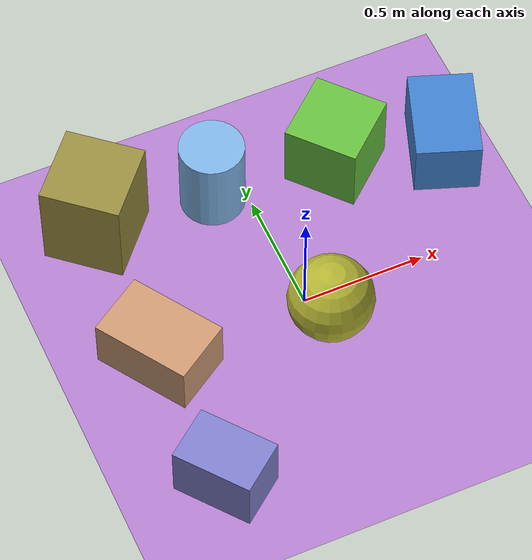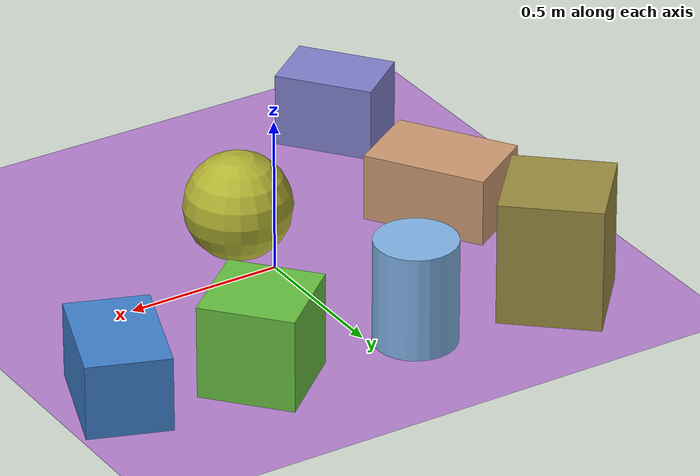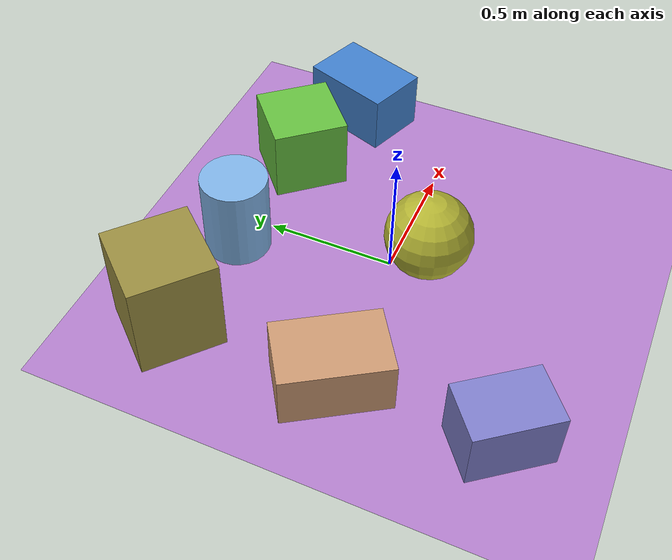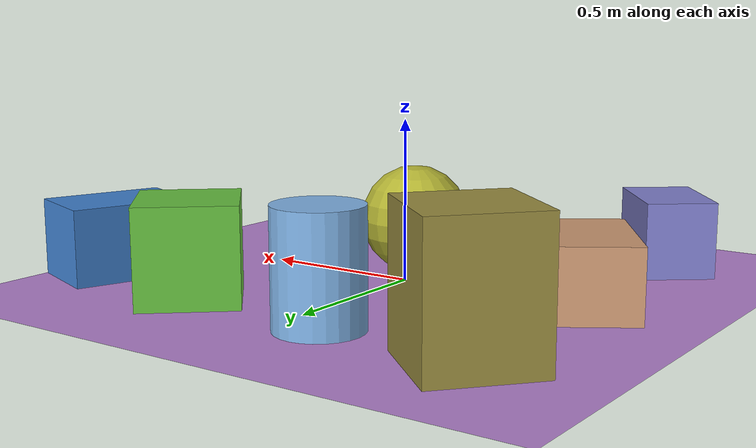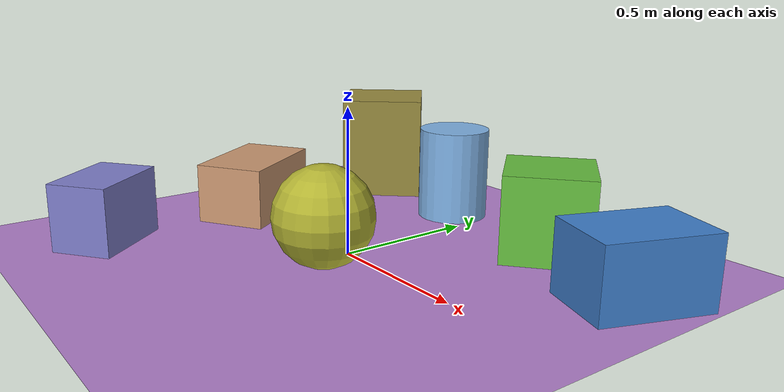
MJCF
<mujoco>
   <asset>
<texture type="skybox" builtin="gradient" rgb1="0.7 0.2 1.0" rgb2="0.2 0.8 0.4" width="500" height="500"/>
<texture name="flat_0" builtin="flat" rgb1="0.7 0.7 0.2" rgb2="0.7 0.7 0.2"  width="500" height="500"/>
<texture name="gradient_1" builtin="gradient" rgb1="0.8 0.5 0.1" rgb2="0.8 0.7 0.8" width="500" height="500"/>
<texture name="flat_2" builtin="flat" rgb1="0.5 0.7 0.9" rgb2="0.5 0.7 0.9"  width="500" height="500"/>
<texture name="checker_3" builtin="checker" rgb1="0.3 0.7 0.3" rgb2="0.9 0.4 0.2" width="500" height="500"/>
<texture name="flat_4" builtin="flat" rgb1="0.5 0.5 0.8" rgb2="0.5 0.5 0.8"  width="500" height="500"/>
<texture name="checker_5" builtin="checker" rgb1="0.8 0.9 0.3" rgb2="0.0 0.6 0.2" width="500" height="500"/>
<texture name="checker_6" builtin="checker" rgb1="0.3 0.3 0.9" rgb2="0.2 0.7 0.7" width="500" height="500"/><material name="flat_0_mat" reflectance="0.896601961401374" texture="flat_0" texuniform="true"/>
<material name="gradient_1_mat" reflectance="0.44170341532936364" texture="gradient_1" texuniform="true"/>
<material name="flat_2_mat" reflectance="0.2980723035600896" texture="flat_2" texuniform="true"/>
<material name="checker_3_mat" reflectance="0.11485383599257815" texrepeat="10 10" texture="checker_3" texuniform="false" />
<material name="flat_4_mat" reflectance="0.19270777725330357" texture="flat_4" texuniform="true"/>
<material name="checker_5_mat" reflectance="0.2116551576868385" texrepeat="5 5" texture="checker_5" texuniform="false" />
<material name="checker_6_mat" reflectance="0.11742020614225657" texrepeat="3 3" texture="checker_6" texuniform="false" />
   </asset>

   <worldbody>
     <geom type="plane" size="1 1 0.1" rgba="0.7 0.5 0.8 1" />
<light pos="0.24620131905431597 0.0473254266551586 2" dir="0 0 -1" cutoff="90" diffuse="1 1 1" specular="1 1 1"/>
<light pos="-0.2701592809235971 -0.3813876698405816 2" dir="0 0 -1" cutoff="90" diffuse="1 1 1" specular="1 1 1"/>
<geom type="sphere" pos="0.05 -0.13 0.17" size="0.17 0.17 0.17" material="flat_0_mat" euler="0 0 8" />
<geom type="box" pos="-0.61 -0.02 0.11" size="0.13 0.2 0.11" material="gradient_1_mat" euler="0 0 33" />
<geom type="cylinder" pos="-0.13 0.59 0.17" size="0.13 0.17 0.17" material="flat_2_mat" euler="0 0 61" />
<geom type="box" pos="-0.61 0.62 0.2" size="0.16 0.16 0.2" material="checker_3_mat" euler="0 0 49" />
<geom type="box" pos="-0.6 -0.62 0.12" size="0.11 0.16 0.12" material="flat_4_mat" euler="0 0 38" />
<geom type="box" pos="0.38 0.55 0.15" size="0.15 0.15 0.15" material="checker_5_mat" euler="0 0 41" />
<geom type="box" pos="0.8 0.44 0.12" size="0.19 0.13 0.12" material="checker_6_mat" euler="0 0 70" /><camera euler="60 0 180" fovy="60" name="camera1" pos="-0.2 -1.5 1"></camera>   </worldbody>
   <visual>
      <headlight diffuse="0.7 0.7 0.7"/>
   </visual>
</mujoco>
